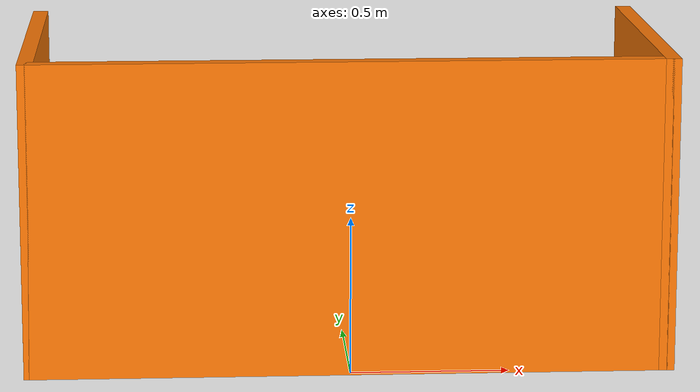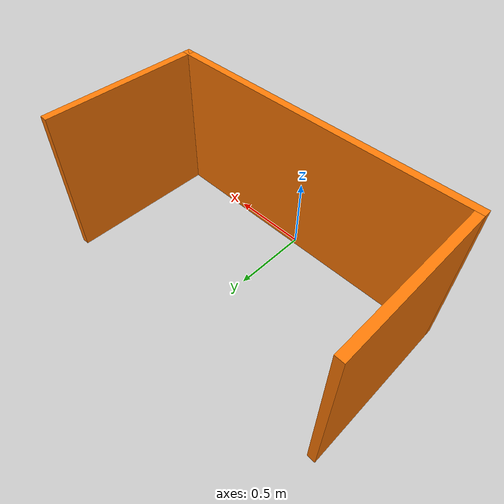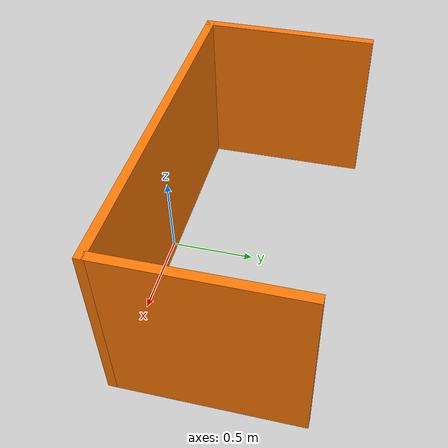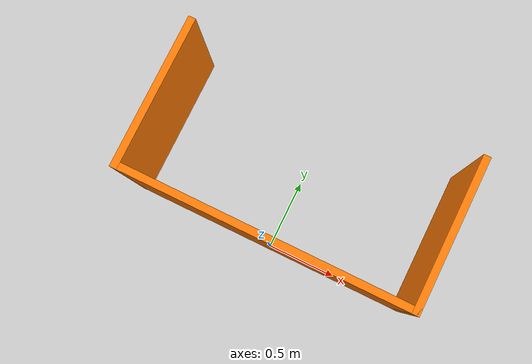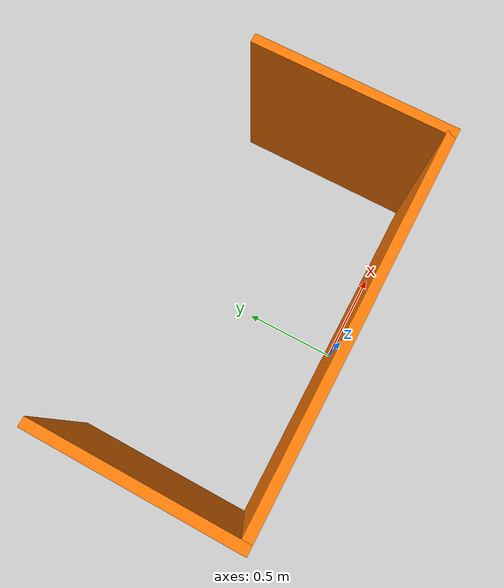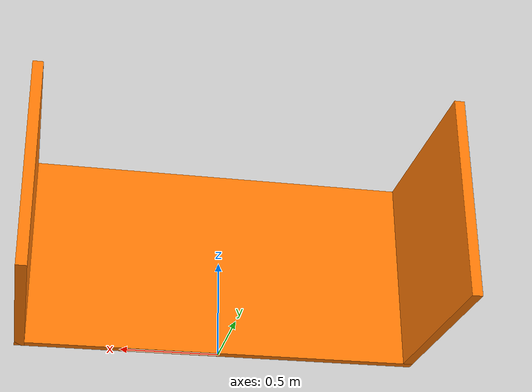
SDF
<?xml version='1.0'?>
<sdf version='1.6'>
  <model name='product_park'>
    <pose frame=''>0 0.5 0 0 -0 0</pose>
    <link name='Wall_11'>
      <collision name='Wall_11_Collision'>
        <geometry>
          <box>
            <size>1.05 0.05 1</size>
          </box>
        </geometry>
        <pose frame=''>0 0 0.5 0 -0 0</pose>
      </collision>
      <visual name='Wall_11_Visual'>
        <pose frame=''>0 0 0.5 0 -0 0</pose>
        <geometry>
          <box>
            <size>1.05 0.05 1</size>
          </box>
        </geometry>
        <material>
          <script>
            <uri>file://media/materials/scripts/gazebo.material</uri>
            <name>Gazebo/Grey</name>
          </script>
          <ambient>0.996078 0.47451 0.0196078 1</ambient>
        </material>
        <meta>
          <layer>0</layer>
        </meta>
      </visual>
      <pose frame=''>-1 -0 0 0 -0 1.5708</pose>
    </link>
    <link name='Wall_13'>
      <collision name='Wall_13_Collision'>
        <geometry>
          <box>
            <size>2.05001 0.05 1</size>
          </box>
        </geometry>
        <pose frame=''>0 0 0.5 0 -0 0</pose>
      </collision>
      <visual name='Wall_13_Visual'>
        <pose frame=''>0 0 0.5 0 -0 0</pose>
        <geometry>
          <box>
            <size>2.05001 0.05 1</size>
          </box>
        </geometry>
        <material>
          <script>
            <uri>file://media/materials/scripts/gazebo.material</uri>
            <name>Gazebo/Grey</name>
          </script>
          <ambient>0.996078 0.47451 0.0196078 1</ambient>
        </material>
        <meta>
          <layer>0</layer>
        </meta>
      </visual>
      <pose frame=''>0 -0.5 0 0 -0 0</pose>
    </link>
    <link name='Wall_15'>
      <collision name='Wall_15_Collision'>
        <geometry>
          <box>
            <size>1.05 0.05 1</size>
          </box>
        </geometry>
        <pose frame=''>0 0 0.5 0 -0 0</pose>
      </collision>
      <visual name='Wall_15_Visual'>
        <pose frame=''>0 0 0.5 0 -0 0</pose>
        <geometry>
          <box>
            <size>1.05 0.05 1</size>
          </box>
        </geometry>
        <material>
          <script>
            <uri>file://media/materials/scripts/gazebo.material</uri>
            <name>Gazebo/Grey</name>
          </script>
          <ambient>0.996078 0.47451 0.0196078 1</ambient>
        </material>
        <meta>
          <layer>0</layer>
        </meta>
      </visual>
      <pose frame=''>1 -0 0 0 -0 1.5708</pose>
    </link>
    <static>1</static>
  </model>
</sdf>
